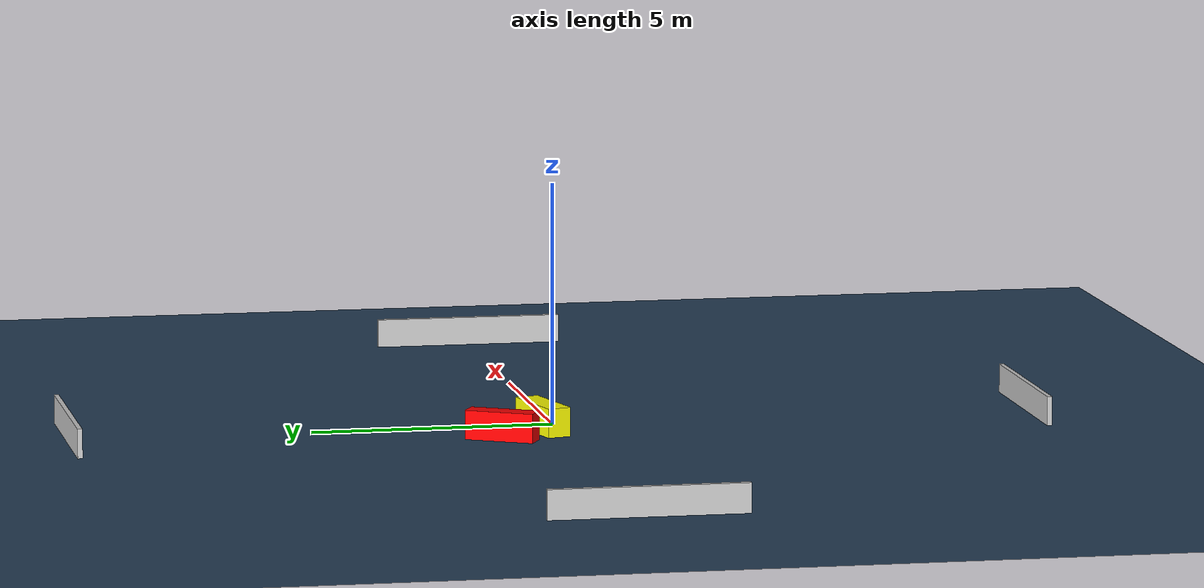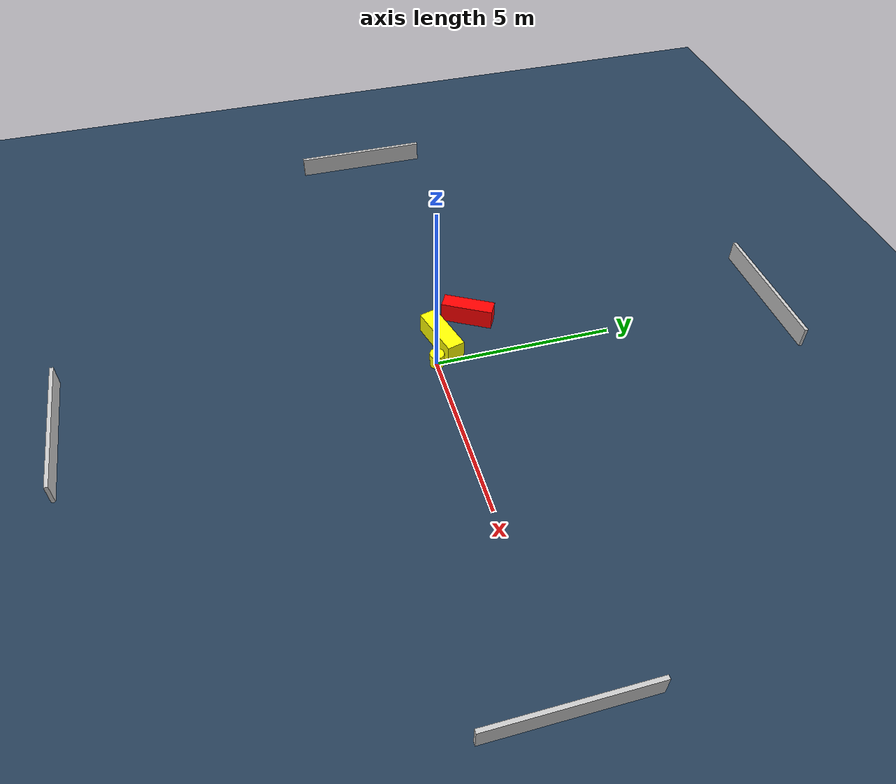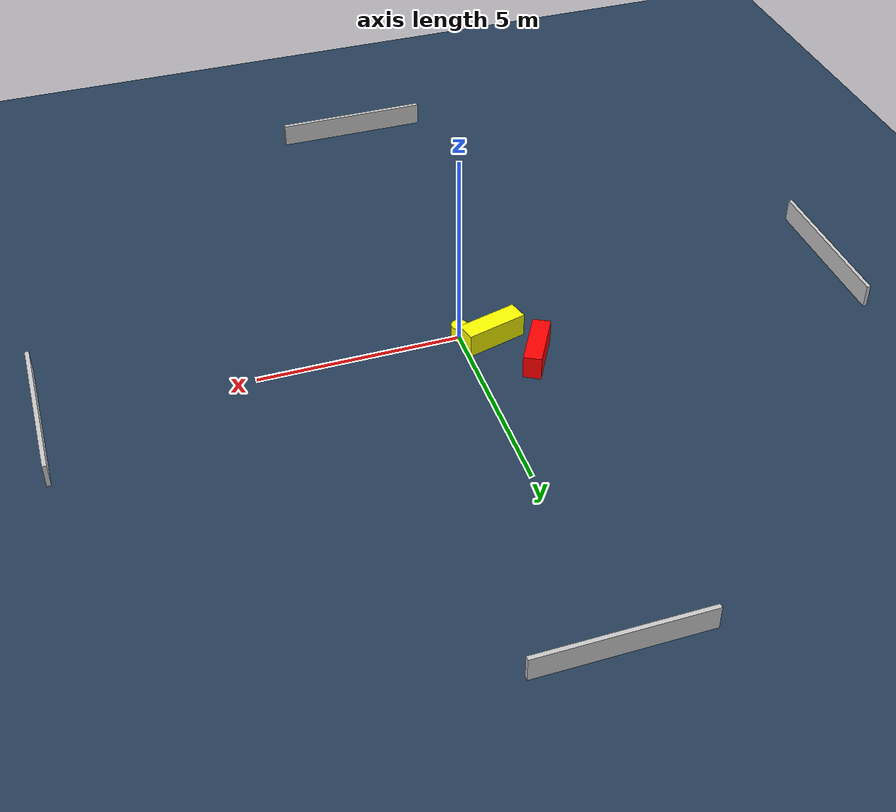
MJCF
<?xml version="1.0" ?>
<mujoco model="generated_environment">
  <option timestep="0.01" integrator="RK4" cone="elliptic"/>
  <default>
    <geom density="1"/>
  </default>
  <asset>
    <texture builtin="gradient" height="3072" name="skybox" rgb1="0.3 0.5 0.7" rgb2="0 0 0" type="skybox" width="512"/>
    <texture builtin="checker" height="300" name="groundplane" rgb1="0.2 0.3 0.4" rgb2="0.1 0.2 0.3" type="2d" width="300"/>
    <material name="groundplane" reflectance="0.2" texrepeat="5 5" texture="groundplane"/>
  </asset>
  <worldbody>
    <light dir="0 0 -1" directional="true" pos="0 0 1.5"/>
    <geom condim="3" friction="0.5 0.005 0.001" material="groundplane" name="floor" pos="0 0 0" size="0 0 0.05" type="plane"/>
    <body name="walls">
      <geom name="wall_1" condim="4" pos="-10.0 0.0 0.3" rgba="0.800000011920929 0.800000011920929 0.800000011920929 1.0" size="0.05 2.0 0.3" type="box"/>
      <geom name="wall_2" condim="4" pos="10.0 0.0 0.3" rgba="0.800000011920929 0.800000011920929 0.800000011920929 1.0" size="0.05 2.0 0.3" type="box"/>
      <geom name="wall_3" condim="4" pos="0.0 -10.0 0.3" rgba="0.800000011920929 0.800000011920929 0.800000011920929 1.0" size="2.0 0.05 0.3" type="box"/>
      <geom name="wall_4" condim="4" pos="0.0 10.0 0.3" rgba="0.800000011920929 0.800000011920929 0.800000011920929 1.0" size="2.0 0.05 0.3" type="box"/>
    </body>
    <body name="robot">
      <joint name="joint_x" type="slide" pos="0 0 0" axis="1 0 0"/>
      <joint name="joint_y" type="slide" pos="0 0 0" axis="0 1 0"/>
      <geom name="robot" type="cylinder" pos="0.0 0.0 0.2" size="0.2 0.2 0.0" mass="5.0" friction="1.0 0.005 0.0001" condim="4" rgba="1.0 1.0 0.0 1.0"/>
    </body>
    <body name="obstacle_1_movable">
      <geom name="obstacle_1_movable" condim="4" pos="-0.7091302888928718 0.33323874272076004 0.3" euler="0 0 105.04386728469173" friction="0.0 0.005 0.001" rgba="1.0 1.0 0.0 1.0" size="0.24846354462953318 0.7746961899636342 0.3" type="box" mass="0.1"/>
      <joint type="free"/>
    </body>
    <body name="obstacle_2_static">
      <geom name="obstacle_2_static" condim="4" pos="-1.496194589441821 1.3268989194455085 0.3" euler="0 0 240.59247984743067" friction="0.0 0.005 0.001" rgba="1.0 0.0 0.0 1.0" size="0.7256863084708609 0.22011307492887205 0.3" type="box"/>
    </body>
  </worldbody>
  <actuator>
    <motor name="actuator_x" joint="joint_x" gear="1" ctrlrange="-1 1"/>
    <motor name="actuator_y" joint="joint_y" gear="1" ctrlrange="-1 1"/>
  </actuator>
</mujoco>
